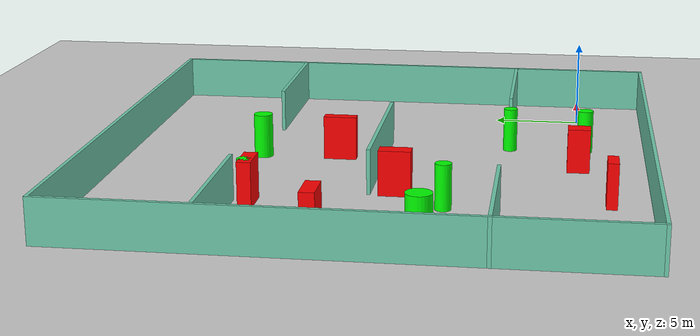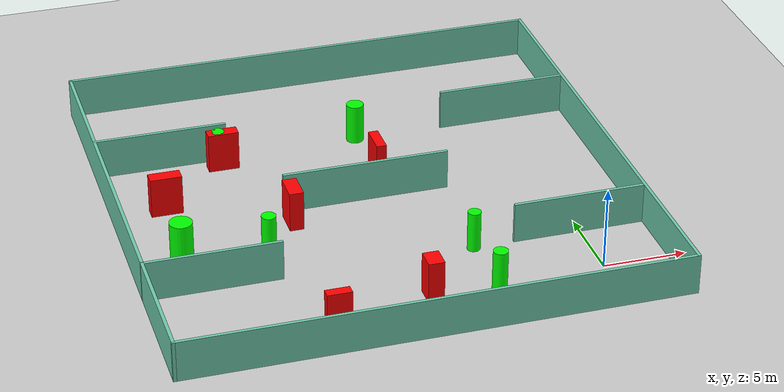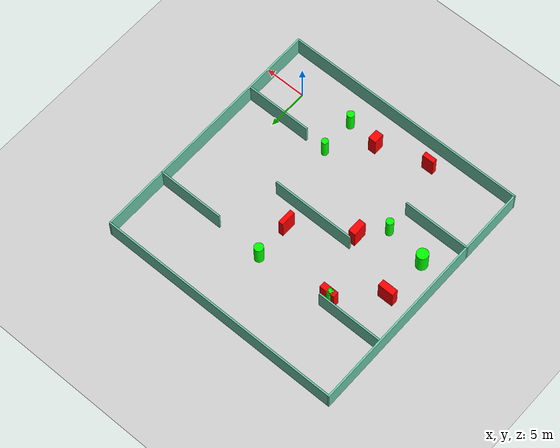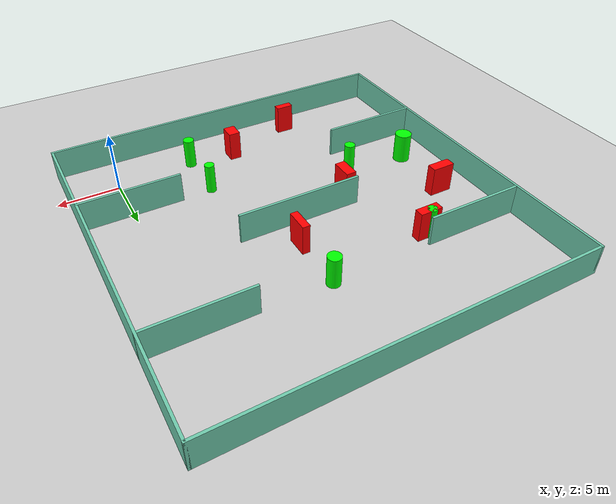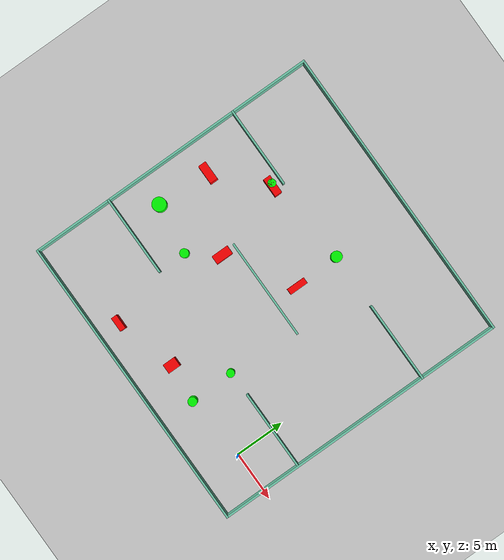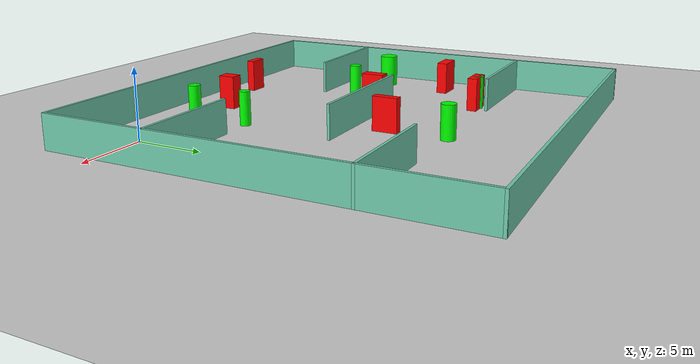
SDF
<sdf version="1.7">
 <world name="default">
  <light name="sun" type="directional">
   <pose>0 0 10 0 -0 0</pose>
   <diffuse>0.8 0.8 0.8 1</diffuse>
   <specular>0.2 0.2 0.2 1</specular>
   <attenuation>
    <range>1000</range>
    <constant>0.9</constant>
    <linear>0.01</linear>
    <quadratic>0.001</quadratic>
   </attenuation>
   <direction>-0.5 0.1 -0.9</direction>
   <spot><inner_angle>0</inner_angle><outer_angle>0</outer_angle><falloff>0</falloff></spot>
  </light>
  <model name="ground_plane">
   <static>1</static>
   <link name="link">
    <collision name="collision">
     <geometry><plane><normal>0 0 1</normal><size>100 100</size></plane></geometry>
     <surface>
      <contact><collide_bitmask>65535</collide_bitmask></contact>
      <friction><ode><mu>100</mu><mu2>50</mu2></ode></friction>
     </surface>
    </collision>
    <visual name="visual">
     <cast_shadows>0</cast_shadows>
     <geometry><plane><normal>0 0 1</normal><size>100 100</size></plane></geometry>
     <material>
      <script><uri>file://media/materials/scripts/gazebo.material</uri><name>Gazebo/Grey</name></script>
     </material>
    </visual>
   </link>
  </model>
  <gravity>0 0 -9.8</gravity>
  <magnetic_field>6e-06 2.3e-05 -4.2e-05</magnetic_field>
  <atmosphere type="adiabatic"/>
  <physics type="ode">
   <max_step_size>0.001</max_step_size>
   <real_time_factor>1</real_time_factor>
   <real_time_update_rate>1000</real_time_update_rate>
  </physics>
  <scene><ambient>0.4 0.4 0.4 1</ambient><background>0.7 0.7 0.7 1</background><shadows>1</shadows></scene>
  <spherical_coordinates>
   <surface_model>EARTH_WGS84</surface_model>
   <latitude_deg>0</latitude_deg>
   <longitude_deg>0</longitude_deg>
   <elevation>0</elevation>
   <heading_deg>0</heading_deg>
  </spherical_coordinates>
  <model name="my_base_walls">
   <link name="Wall_10">
    <collision name="Wall_10_Collision">
     <geometry><box><size>8.2 0.2 2.5</size></box></geometry>
     <pose>0 0 1.25 0 -0 0</pose>
    </collision>
    <visual name="Wall_10_Visual">
     <pose>0 0 1.25 0 -0 0</pose>
     <geometry><box><size>8.2 0.2 2.5</size></box></geometry>
     <material>
      <script><uri>file://media/materials/scripts/gazebo.material</uri><name>Gazebo/Grey</name></script>
      <ambient>0.435294 0.796078 0.67451 1</ambient>
     </material>
     <meta><layer>0</layer></meta>
    </visual>
    <pose>-11 -7 0 0 -0 0</pose>
   </link>
   <link name="Wall_12">
    <collision name="Wall_12_Collision">
     <geometry><box><size>8.2 0.2 2.5</size></box></geometry>
     <pose>0 0 1.25 0 -0 0</pose>
    </collision>
    <visual name="Wall_12_Visual">
     <pose>0 0 1.25 0 -0 0</pose>
     <geometry><box><size>8.2 0.2 2.5</size></box></geometry>
     <material>
      <script><uri>file://media/materials/scripts/gazebo.material</uri><name>Gazebo/Grey</name></script>
      <ambient>0.435294 0.796078 0.67451 1</ambient>
     </material>
     <meta><layer>0</layer></meta>
    </visual>
    <pose>-11 7 0 0 -0 0</pose>
   </link>
   <link name="Wall_14">
    <collision name="Wall_14_Collision">
     <geometry><box><size>8.2 0.2 2.5</size></box></geometry>
     <pose>0 0 1.25 0 -0 0</pose>
    </collision>
    <visual name="Wall_14_Visual">
     <pose>0 0 1.25 0 -0 0</pose>
     <geometry><box><size>8.2 0.2 2.5</size></box></geometry>
     <material>
      <script><uri>file://media/materials/scripts/gazebo.material</uri><name>Gazebo/Grey</name></script>
      <ambient>0.435294 0.796078 0.67451 1</ambient>
     </material>
     <meta><layer>0</layer></meta>
    </visual>
    <pose>11 7 0 0 -0 3.14159</pose>
   </link>
   <link name="Wall_16">
    <collision name="Wall_16_Collision">
     <geometry><box><size>10.2 0.2 2.5</size></box></geometry>
     <pose>0 0 1.25 0 -0 0</pose>
    </collision>
    <visual name="Wall_16_Visual">
     <pose>0 0 1.25 0 -0 0</pose>
     <geometry><box><size>10.2 0.2 2.5</size></box></geometry>
     <material>
      <script><uri>file://media/materials/scripts/gazebo.material</uri><name>Gazebo/Grey</name></script>
      <ambient>0.435294 0.796078 0.67451 1</ambient>
     </material>
     <meta><layer>0</layer></meta>
    </visual>
    <pose>0 0 0 0 -0 3.14159</pose>
   </link>
   <link name="Wall_2">
    <collision name="Wall_2_Collision">
     <geometry><box><size>30.2 0.2 2.5</size></box></geometry>
     <pose>0 0 1.25 0 -0 0</pose>
    </collision>
    <visual name="Wall_2_Visual">
     <pose>0 0 1.25 0 -0 0</pose>
     <geometry><box><size>30.2 0.2 2.5</size></box></geometry>
     <material>
      <script><uri>file://media/materials/scripts/gazebo.material</uri><name>Gazebo/Grey</name></script>
      <ambient>0.435294 0.796078 0.67451 1</ambient>
     </material>
     <meta><layer>0</layer></meta>
    </visual>
    <pose>0 -15 0 0 -0 3.14159</pose>
   </link>
   <link name="Wall_3">
    <collision name="Wall_3_Collision">
     <geometry><box><size>30.2 0.2 2.5</size></box></geometry>
     <pose>0 0 1.25 0 -0 0</pose>
    </collision>
    <visual name="Wall_3_Visual">
     <pose>0 0 1.25 0 -0 0</pose>
     <geometry><box><size>30.2 0.2 2.5</size></box></geometry>
     <material>
      <script><uri>file://media/materials/scripts/gazebo.material</uri><name>Gazebo/Grey</name></script>
      <ambient>0.435294 0.796078 0.67451 1</ambient>
     </material>
     <meta><layer>0</layer></meta>
    </visual>
    <pose>-15 0 0 0 -0 1.5708</pose>
   </link>
   <link name="Wall_4">
    <collision name="Wall_4_Collision">
     <geometry><box><size>30.2 0.2 2.5</size></box></geometry>
     <pose>0 0 1.25 0 -0 0</pose>
    </collision>
    <visual name="Wall_4_Visual">
     <pose>0 0 1.25 0 -0 0</pose>
     <geometry><box><size>30.2 0.2 2.5</size></box></geometry>
     <material>
      <script><uri>file://media/materials/scripts/gazebo.material</uri><name>Gazebo/Grey</name></script>
      <ambient>0.435294 0.796078 0.67451 1</ambient>
     </material>
     <meta><layer>0</layer></meta>
    </visual>
    <pose>0 15 0 0 -0 0</pose>
   </link>
   <link name="Wall_6">
    <collision name="Wall_6_Collision">
     <geometry><box><size>30.2 0.2 2.5</size></box></geometry>
     <pose>0 0 1.25 0 -0 0</pose>
    </collision>
    <visual name="Wall_6_Visual">
     <pose>0 0 1.25 0 -0 0</pose>
     <geometry><box><size>30.2 0.2 2.5</size></box></geometry>
     <material>
      <script><uri>file://media/materials/scripts/gazebo.material</uri><name>Gazebo/Grey</name></script>
      <ambient>0.435294 0.796078 0.67451 1</ambient>
     </material>
     <meta><layer>0</layer></meta>
    </visual>
    <pose>15 0 0 0 -0 1.5708</pose>
   </link>
   <link name="Wall_8">
    <collision name="Wall_8_Collision">
     <geometry><box><size>8.2 0.2 2.5</size></box></geometry>
     <pose>0 0 1.25 0 -0 0</pose>
    </collision>
    <visual name="Wall_8_Visual">
     <pose>0 0 1.25 0 -0 0</pose>
     <geometry><box><size>8.2 0.2 2.5</size></box></geometry>
     <material>
      <script><uri>file://media/materials/scripts/gazebo.material</uri><name>Gazebo/Grey</name></script>
      <ambient>0.435294 0.796078 0.67451 1</ambient>
     </material>
     <meta><layer>0</layer></meta>
    </visual>
    <pose>11 -7 0 0 -0 3.14159</pose>
   </link>
   <static>1</static>
   <pose>-11 11 0 0 -0 0</pose>
  </model>
  <model name="cylinder1">
   <static>1</static>
   <link name="link">
    <inertial>
     <mass>1</mass>
     <inertia><ixx>0.5</ixx><ixy>0</ixy><ixz>0</ixz><iyy>0.5</iyy><iyz>0</iyz><izz>1</izz></inertia>
    </inertial>
    <collision name="collision">
     <geometry><cylinder><radius>0.44047084373071743</radius><length>2.5</length></cylinder></geometry>
    </collision>
    <visual name="visual">
     <geometry><cylinder><radius>0.44047084373071743</radius><length>2.5</length></cylinder></geometry>
     <material>
      <ambient>0 1 0 1</ambient>
      <diffuse>0 1 0 1</diffuse>
      <specular>0.1 0.1 0.1 1</specular>
      <emissive>0 0 0 0</emissive>
     </material>
    </visual>
   </link>
   <pose>-18.01732111951965 6.842885152707105 1.25 0 0 0</pose>
  </model>
  <model name="cylinder2">
   <static>1</static>
   <link name="link">
    <inertial>
     <mass>1</mass>
     <inertia><ixx>0.5</ixx><ixy>0</ixy><ixz>0</ixz><iyy>0.5</iyy><iyz>0</iyz><izz>1</izz></inertia>
    </inertial>
    <collision name="collision">
     <geometry><cylinder><radius>0.4449735006822303</radius><length>2.5</length></cylinder></geometry>
    </collision>
    <visual name="visual">
     <geometry><cylinder><radius>0.4449735006822303</radius><length>2.5</length></cylinder></geometry>
     <material>
      <ambient>0 1 0 1</ambient>
      <diffuse>0 1 0 1</diffuse>
      <specular>0.1 0.1 0.1 1</specular>
      <emissive>0 0 0 0</emissive>
     </material>
    </visual>
   </link>
   <pose>-6.47556930065746 -0.4477404628201045 1.25 0 0 0</pose>
  </model>
  <model name="cylinder3">
   <static>1</static>
   <link name="link">
    <inertial>
     <mass>1</mass>
     <inertia><ixx>0.5</ixx><ixy>0</ixy><ixz>0</ixz><iyy>0.5</iyy><iyz>0</iyz><izz>1</izz></inertia>
    </inertial>
    <collision name="collision">
     <geometry><cylinder><radius>0.5368533812740762</radius><length>2.5</length></cylinder></geometry>
    </collision>
    <visual name="visual">
     <geometry><cylinder><radius>0.5368533812740762</radius><length>2.5</length></cylinder></geometry>
     <material>
      <ambient>0 1 0 1</ambient>
      <diffuse>0 1 0 1</diffuse>
      <specular>0.1 0.1 0.1 1</specular>
      <emissive>0 0 0 0</emissive>
     </material>
    </visual>
   </link>
   <pose>-9.633002764423546 18.049808780054203 1.25 0 0 0</pose>
  </model>
  <model name="cylinder4">
   <static>1</static>
   <link name="link">
    <inertial>
     <mass>1</mass>
     <inertia><ixx>0.5</ixx><ixy>0</ixy><ixz>0</ixz><iyy>0.5</iyy><iyz>0</iyz><izz>1</izz></inertia>
    </inertial>
    <collision name="collision">
     <geometry><cylinder><radius>0.39727509573935554</radius><length>2.5</length></cylinder></geometry>
    </collision>
    <visual name="visual">
     <geometry><cylinder><radius>0.39727509573935554</radius><length>2.5</length></cylinder></geometry>
     <material>
      <ambient>0 1 0 1</ambient>
      <diffuse>0 1 0 1</diffuse>
      <specular>0.1 0.1 0.1 1</specular>
      <emissive>0 0 0 0</emissive>
     </material>
    </visual>
   </link>
   <pose>-18.584167028013326 17.13009346632236 1.25 0 0 0</pose>
  </model>
  <model name="cylinder5">
   <static>1</static>
   <link name="link">
    <inertial>
     <mass>1</mass>
     <inertia><ixx>0.5</ixx><ixy>0</ixy><ixz>0</ixz><iyy>0.5</iyy><iyz>0</iyz><izz>1</izz></inertia>
    </inertial>
    <collision name="collision">
     <geometry><cylinder><radius>0.6883874354416624</radius><length>2.5</length></cylinder></geometry>
    </collision>
    <visual name="visual">
     <geometry><cylinder><radius>0.6883874354416624</radius><length>2.5</length></cylinder></geometry>
     <material>
      <ambient>0 1 0 1</ambient>
      <diffuse>0 1 0 1</diffuse>
      <specular>0.1 0.1 0.1 1</specular>
      <emissive>0 0 0 0</emissive>
     </material>
    </visual>
   </link>
   <pose>-23.0050085192236 7.571310208582831 1.25 0 0 0</pose>
  </model>
  <model name="cylinder6">
   <static>1</static>
   <link name="link">
    <inertial>
     <mass>1</mass>
     <inertia><ixx>0.5</ixx><ixy>0</ixy><ixz>0</ixz><iyy>0.5</iyy><iyz>0</iyz><izz>1</izz></inertia>
    </inertial>
    <collision name="collision">
     <geometry><cylinder><radius>0.393934185993877</radius><length>2.5</length></cylinder></geometry>
    </collision>
    <visual name="visual">
     <geometry><cylinder><radius>0.393934185993877</radius><length>2.5</length></cylinder></geometry>
     <material>
      <ambient>0 1 0 1</ambient>
      <diffuse>0 1 0 1</diffuse>
      <specular>0.1 0.1 0.1 1</specular>
      <emissive>0 0 0 0</emissive>
     </material>
    </visual>
   </link>
   <pose>-6.562660318487234 3.9067052961336053 1.25 0 0 0</pose>
  </model>
  <model name="box1">
   <static>1</static>
   <link name="link">
    <inertial>
     <mass>1</mass>
     <inertia><ixx>0.083</ixx><ixy>0</ixy><ixz>0</ixz><iyy>0.083</iyy><iyz>0</iyz><izz>0.083</izz></inertia>
    </inertial>
    <collision name="collision">
     <geometry><box><size>1.8877194147854668 0.7411726853720265 2.5</size></box></geometry>
    </collision>
    <visual name="visual">
     <geometry><box><size>1.8877194147854668 0.7411726853720265 2.5</size></box></geometry>
     <material>
      <ambient>1 0 0 1</ambient>
      <diffuse>1 0 0 1</diffuse>
      <specular>0.1 0.1 0.1 1</specular>
      <emissive>0 0 0 0</emissive>
     </material>
    </visual>
    <sensor name="my_contact" type="contact">
     <contact><collision>box_collision</collision><topic>__default_topic__</topic></contact>
    </sensor>
   </link>
   <pose>-18.335447469970077 17.026660741810176 1.25 0 0 0</pose>
  </model>
  <model name="box2">
   <static>1</static>
   <link name="link">
    <inertial>
     <mass>1</mass>
     <inertia><ixx>0.083</ixx><ixy>0</ixy><ixz>0</ixz><iyy>0.083</iyy><iyz>0</iyz><izz>0.083</izz></inertia>
    </inertial>
    <collision name="collision">
     <geometry><box><size>0.9637130585514524 1.262143685917823 2.5</size></box></geometry>
    </collision>
    <visual name="visual">
     <geometry><box><size>0.9637130585514524 1.262143685917823 2.5</size></box></geometry>
     <material>
      <ambient>1 0 0 1</ambient>
      <diffuse>1 0 0 1</diffuse>
      <specular>0.1 0.1 0.1 1</specular>
      <emissive>0 0 0 0</emissive>
     </material>
    </visual>
    <sensor name="my_contact" type="contact">
     <contact><collision>box_collision</collision><topic>__default_topic__</topic></contact>
    </sensor>
   </link>
   <pose>-10.306773191518833 -0.07638418586816043 1.25 0 0 0</pose>
  </model>
  <model name="box3">
   <static>1</static>
   <link name="link">
    <inertial>
     <mass>1</mass>
     <inertia><ixx>0.083</ixx><ixy>0</ixy><ixz>0</ixz><iyy>0.083</iyy><iyz>0</iyz><izz>0.083</izz></inertia>
    </inertial>
    <collision name="collision">
     <geometry><box><size>0.8646919506790014 1.744764588049771 2.5</size></box></geometry>
    </collision>
    <visual name="visual">
     <geometry><box><size>0.8646919506790014 1.744764588049771 2.5</size></box></geometry>
     <material>
      <ambient>1 0 0 1</ambient>
      <diffuse>1 0 0 1</diffuse>
      <specular>0.1 0.1 0.1 1</specular>
      <emissive>0 0 0 0</emissive>
     </material>
    </visual>
    <sensor name="my_contact" type="contact">
     <contact><collision>box_collision</collision><topic>__default_topic__</topic></contact>
    </sensor>
   </link>
   <pose>-15.858231394269904 9.59080080912647 1.25 0 0 0</pose>
  </model>
  <model name="box4">
   <static>1</static>
   <link name="link">
    <inertial>
     <mass>1</mass>
     <inertia><ixx>0.083</ixx><ixy>0</ixy><ixz>0</ixz><iyy>0.083</iyy><iyz>0</iyz><izz>0.083</izz></inertia>
    </inertial>
    <collision name="collision">
     <geometry><box><size>1.4537063452322603 0.5886740518971757 2.5</size></box></geometry>
    </collision>
    <visual name="visual">
     <geometry><box><size>1.4537063452322603 0.5886740518971757 2.5</size></box></geometry>
     <material>
      <ambient>1 0 0 1</ambient>
      <diffuse>1 0 0 1</diffuse>
      <specular>0.1 0.1 0.1 1</specular>
      <emissive>0 0 0 0</emissive>
     </material>
    </visual>
    <sensor name="my_contact" type="contact">
     <contact><collision>box_collision</collision><topic>__default_topic__</topic></contact>
    </sensor>
   </link>
   <pose>-16.295405503037127 -1.8010308063190061 1.25 0 0 0</pose>
  </model>
  <model name="box5">
   <static>1</static>
   <link name="link">
    <inertial>
     <mass>1</mass>
     <inertia><ixx>0.083</ixx><ixy>0</ixy><ixz>0</ixz><iyy>0.083</iyy><iyz>0</iyz><izz>0.083</izz></inertia>
    </inertial>
    <collision name="collision">
     <geometry><box><size>0.6117713006331336 1.865716327549122 2.5</size></box></geometry>
    </collision>
    <visual name="visual">
     <geometry><box><size>0.6117713006331336 1.865716327549122 2.5</size></box></geometry>
     <material>
      <ambient>1 0 0 1</ambient>
      <diffuse>1 0 0 1</diffuse>
      <specular>0.1 0.1 0.1 1</specular>
      <emissive>0 0 0 0</emissive>
     </material>
    </visual>
    <sensor name="my_contact" type="contact">
     <contact><collision>box_collision</collision><topic>__default_topic__</topic></contact>
    </sensor>
   </link>
   <pose>-9.523200713652379 13.537117677320335 1.25 0 0 0</pose>
  </model>
  <model name="box6">
   <static>1</static>
   <link name="link">
    <inertial>
     <mass>1</mass>
     <inertia><ixx>0.083</ixx><ixy>0</ixy><ixz>0</ixz><iyy>0.083</iyy><iyz>0</iyz><izz>0.083</izz></inertia>
    </inertial>
    <collision name="collision">
     <geometry><box><size>1.9138173957689615 0.8027052908577572 2.5</size></box></geometry>
    </collision>
    <visual name="visual">
     <geometry><box><size>1.9138173957689615 0.8027052908577572 2.5</size></box></geometry>
     <material>
      <ambient>1 0 0 1</ambient>
      <diffuse>1 0 0 1</diffuse>
      <specular>0.1 0.1 0.1 1</specular>
      <emissive>0 0 0 0</emissive>
     </material>
    </visual>
    <sensor name="my_contact" type="contact">
     <contact><collision>box_collision</collision><topic>__default_topic__</topic></contact>
    </sensor>
   </link>
   <pose>-22.77878711872993 12.908286568387215 1.25 0 0 0</pose>
  </model>
 </world>
</sdf>
